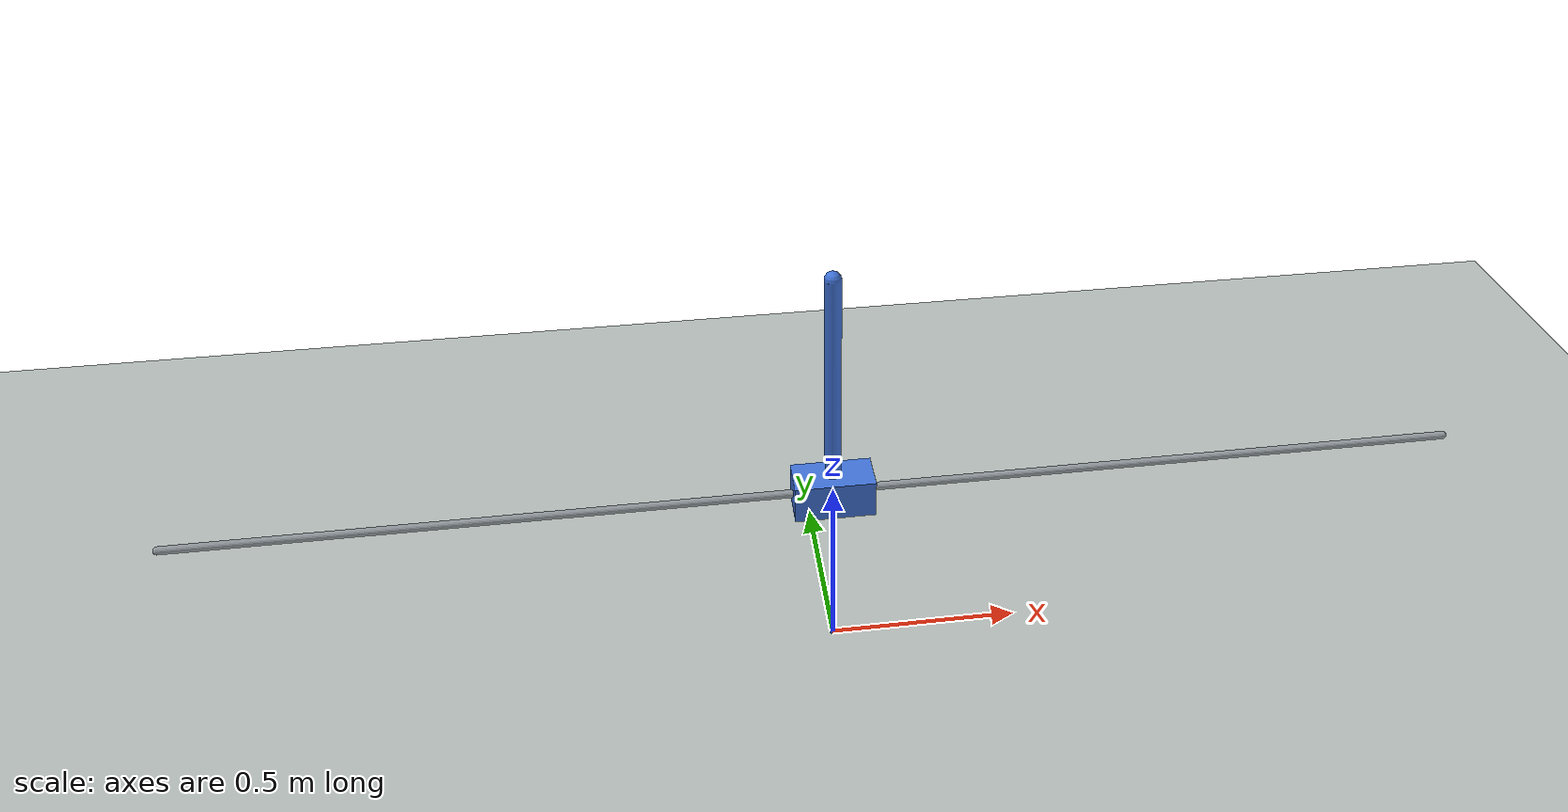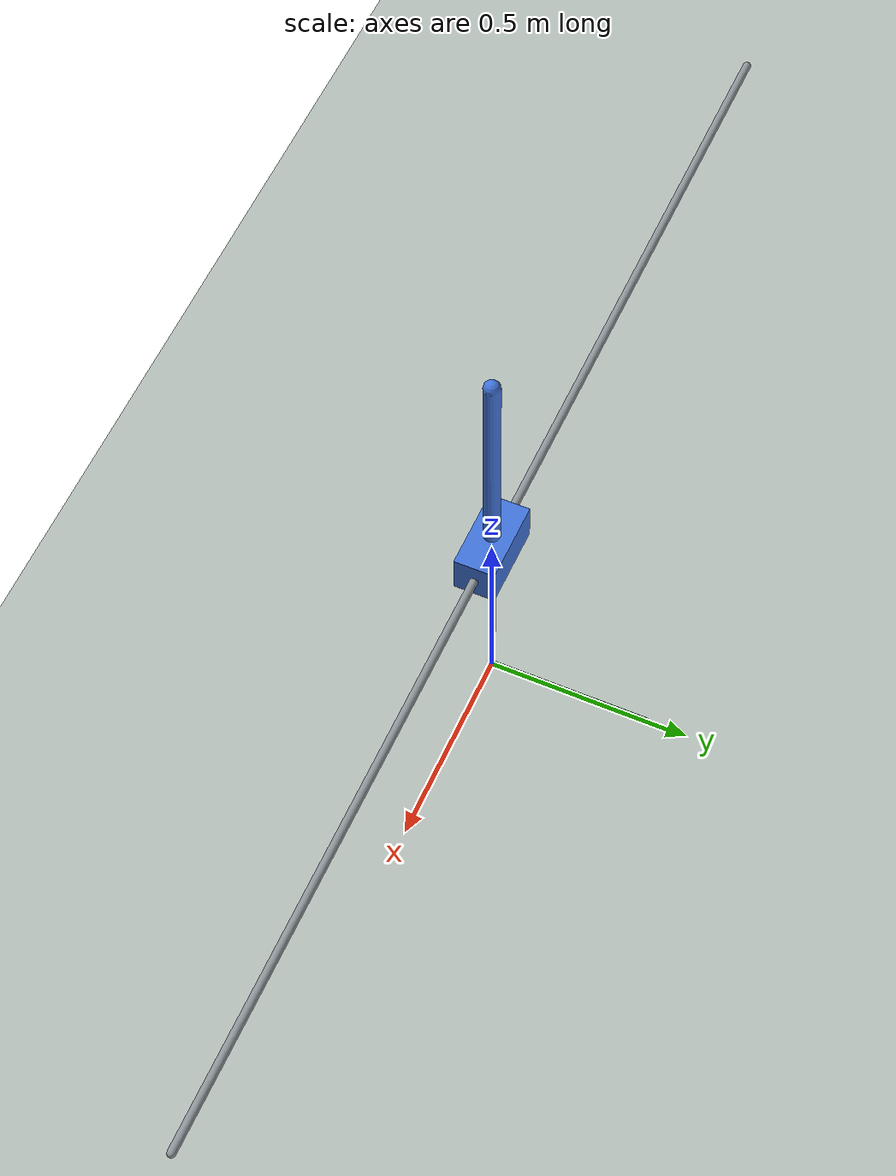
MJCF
<mujoco model="cartpole">
  <compiler angle="radian"/>
  <option timestep="0.002"/>
  <statistic extent="2" center="0 0 0.6"/>

  <visual>
    <headlight ambient="0.30 0.30 0.30" diffuse="0.35 0.35 0.35" specular="0.05 0.05 0.05"/>
    <global azimuth="90" elevation="-15" cameraid="0"/>
  </visual>

  <asset>
    <texture type="skybox" builtin="gradient" rgb1="0.62 0.74 0.86" rgb2="0.94 0.96 0.97" width="512" height="3072"/>
    <texture type="2d" name="grid" builtin="checker" mark="edge" rgb1="0.85 0.87 0.86" rgb2="0.55 0.60 0.58" markrgb="0.35 0.38 0.36" width="300" height="300"/>
    <material name="grid" texture="grid" texrepeat="4 4" texuniform="true" reflectance="0.05"/>
    <material name="link" rgba="0.25 0.45 0.85 1" specular="0.3" shininess="0.4"/>
    <material name="rail" rgba="0.55 0.58 0.60 1"/>
  </asset>

  <worldbody>
    <camera name="main" pos="0 -3.5 1.0" xyaxes="1 0 0  0 0 1"/>
    <light name="key" pos="1.5 -1.5 3" dir="-0.4 0.4 -1" directional="true" diffuse="0.45 0.45 0.45" castshadow="true"/>

    <!-- 三軸 -->
    <site name="axis_x" type="cylinder" fromto="0 0 0.002  0.4 0 0.002" size="0.008" rgba="0.9 0.15 0.15 1"/>
    <site name="axis_y" type="cylinder" fromto="0 0 0.002  0 0.4 0.002" size="0.008" rgba="0.15 0.7 0.2 1"/>
    <site name="axis_z" type="cylinder" fromto="0 0 0      0 0 0.4" size="0.008" rgba="0.2 0.35 0.9 1"/>

    <geom name="floor" type="plane" size="3 3 0.05" material="grid"/>

    <geom name="rail" type="capsule" fromto="-1.6 0 0.5  1.6 0 0.5" size="0.01" material="rail" contype="0" conaffinity="0"/>

    <body name="cart" pos="0 0 0.5">
      <joint name="slider" type="slide" axis="1 0 0" range="-1.5 1.5"/>
      <geom name="cart_geom" type="box" size="0.1 0.05 0.05" material="link"/>

      <body name="pole" pos="0 0 0">
        <joint name="hinge" type="hinge" axis="0 1 0"/>
        <geom name="pole_geom" type="capsule" fromto="0 0 0 0 0 0.6" size="0.02" material="link"/>
      </body>
    </body>
  </worldbody>
  <actuator>
    <motor name="slide_motor" joint="slider" gear="10" ctrlrange="-1 1"/>
  </actuator>
  <sensor>
    <jointpos name="cart_pos" joint="slider"/>
    <jointvel name="cart_vel" joint="slider"/>
    <jointpos name="pole_angle" joint="hinge"/>
    <jointvel name="pole_rate" joint="hinge"/>
  </sensor>
</mujoco>
